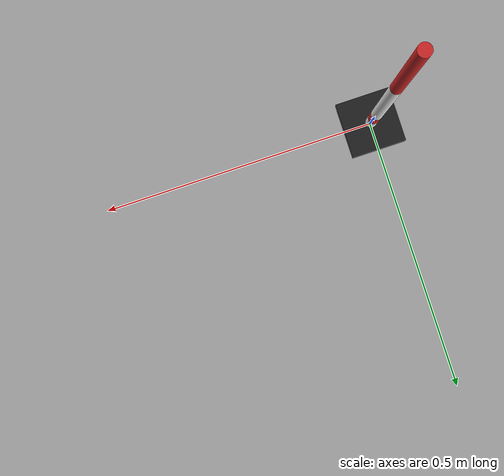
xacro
<?xml version="1.0" ?>
<robot name="robot2" xmlns:xacro="http://ros.org/wiki/xacro">

    <xacro:include filename="robot2_2.xacro" />

 <link name="world">
 </link>

 <joint name="bottom_joint" type="fixed">
    <origin xyz="0 0 0" rpy="0 0 0" />
    <parent link="world"/>
    <child link="base_link"/>
  </joint>

    <!-- base_link is a large rectangular plate. Some things to note: -->
    <!-- - We set the visual origin Z to half the box height, so that the link origin sits at the bottom of the box -->

    <link name="base_link">
        <visual>
            <origin xyz="0 0 ${base_height/2}" rpy="0 0 0"/>
            <geometry>
                <box size="${base_width}  ${base_width} ${base_height}"/>
            </geometry>
            <material name="Black"/>
        </visual>
        <collision>
             <origin xyz="0 0 ${base_height/2}" rpy="0 0 0"/>
            <geometry>
                <box size="${base_width}  ${base_width} ${base_height}" />
           </geometry>
        </collision>
         <xacro:inertial_box mass="0.5" x="${base_width} " y="${base_width} " z="${base_height} ">
            <origin xyz="0 0 ${base_height/2}" rpy="0 0 0"/>
        </xacro:inertial_box>
    </link>

   <gazebo reference="base_link">
    <material>Gazebo/Black</material>
  </gazebo>

 <xacro:joint_revolute_z joint_name="base_joint" parent_link ="base_link"
		child_link ="axis_2_link">
	 <origin xyz="0 0 ${base_height/2}" rpy="0 0 0"/>
</xacro:joint_revolute_z>

	 <!-- Axis_2 Link-->
 <link name="axis_2_link">
	<xacro:cylinder_visual_collision_white radius ="${axis_2_radius}" length = "${axis_2_height}">
	<origin  xyz="0 0 ${axis_2_height/2}" rpy="0 0 0"/>
	</xacro:cylinder_visual_collision_white>
	 <xacro:inertial_cylinder mass="0.5" length = "${axis_2_height}" radius ="${axis_2_radius}">
           <origin  xyz="0 0 ${axis_2_height/2}" rpy="0  ${45*deg_to_rad} 0"/>
        </xacro:inertial_cylinder>
</link>

 <joint name="axis_2_joint" type="fixed">
    <origin xyz="0 0 ${axis_2_height} " rpy="0 0 0" />
    <parent link="axis_2_link"/>
    <child link="axis_3_link"/>
  </joint>

	 <!-- Axis_3 Link-->

 <link name="axis_3_link">
	<xacro:cylinder_visual_collision_red radius ="${axis_2_radius}" length = "${axis_3_height}">
	<origin  xyz="0 0 ${axis_3_height/2}" rpy="0 0  0"/>
	</xacro:cylinder_visual_collision_red>
	 <xacro:inertial_cylinder mass="0.5" length = "${axis_3_height}" radius ="${axis_2_radius}">
           <origin  xyz="0 0 ${axis_3_height/2}" rpy="0  0 0"/>
        </xacro:inertial_cylinder>
</link>

 <xacro:joint_revolute_y joint_name="axis_3_joint" parent_link ="axis_3_link"
		child_link ="axis_4_link">
	 <origin xyz="0 0 ${axis_3_height}" rpy="0 0 0"/>
</xacro:joint_revolute_y>

	 <!-- Axis_4 Link-->

 <link name="axis_4_link">
	<xacro:cylinder_visual_collision_white radius ="${axis_2_radius}" length = "${axis_4_height}">
	<origin  xyz="0 0 ${axis_4_height/2}" rpy="0 0  0"/>
	</xacro:cylinder_visual_collision_white>
	 <xacro:inertial_cylinder mass="0.5" length = "${axis_4_height}" radius ="${axis_2_radius}">
           <origin  xyz="0 0 ${axis_4_height/2}" rpy="0  0 0"/>
        </xacro:inertial_cylinder>
</link>

 <xacro:joint_revolute_y joint_name="axis_4_joint" parent_link ="axis_4_link"
		child_link ="axis_5_link">
	 <origin xyz="0 0 ${axis_4_height}" rpy="0 0 0"/>
</xacro:joint_revolute_y>

		 <!-- Axis_5 Link-->

 <link name="axis_5_link">
	<xacro:cylinder_visual_collision_red radius ="${axis_2_radius}" length = "${axis_5_height}">
	<origin  xyz="0 0 ${axis_5_height/2}" rpy="0 0  0"/>
	</xacro:cylinder_visual_collision_red>
	 <xacro:inertial_cylinder mass="0.5" length = "${axis_5_height}" radius ="${axis_2_radius}">
           <origin  xyz="0 0 ${axis_5_height/2}" rpy="0  0 0"/>
        </xacro:inertial_cylinder>
</link>

  <gazebo>
    <plugin name="gazebo_ros_control" filename="libgazebo_ros_control.so">
    </plugin>
  </gazebo>
</robot>

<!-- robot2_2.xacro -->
<robot xmlns:xacro="http://www.ros.org/wiki/xacro" >

	 <!-- Include materials -->

     <xacro:property name="deg_to_rad" value="0.01745329251994329577"/>

  <!-- Constants -->
  <xacro:property name="M_SCALE_CM" value="0.01"/>
  <xacro:property name="M_PI" value="3.14159"/>

  <!-- Base properties -->
  <xacro:property name="base_height" value="0.1" />
  <xacro:property name="base_width" value="0.1" />

  <!-- Axis_2 Fixed Angles-->
  <xacro:property name="axis_2_height" value="0.343" />
  <xacro:property name="axis_2_radius" value="${0.01}" />

  <!-- Axis_3 Shoulder_Rotation -->
  <xacro:property name="axis_3_height" value="${0.267}" />

  <!-- Axis_4_Forearm_rotation-->
  <xacro:property name="axis_4_height" value="${1.5}" />

  <!-- Axis_5 Wrist rotation-->
  <xacro:property name="axis_5_height" value="${1.5}" />

  <xacro:macro name="inertial_box" params="mass x y z *origin">
        <inertial>
            <xacro:insert_block name="origin"/>
            <mass value="${mass}" />
            <inertia ixx="${(1/12) * mass * (y*y+z*z)}" ixy="0.0" ixz="0.0"
                    iyy="${(1/12) * mass * (x*x+z*z)}" iyz="0.0"
                    izz="${(1/12) * mass * (x*x+y*y)}" />
        </inertial>
    </xacro:macro>

    <xacro:macro name="inertial_cylinder" params="mass length radius *origin">
        <inertial>
            <xacro:insert_block name="origin"/>
            <mass value="${mass}" />
            <inertia ixx="${(1/12)*mass*(3*radius*radius+length*length)}" 				ixy="0.0" ixz="0.0"
                    iyy="${(1/12)*mass*(3*radius*radius+length*length)}" 				iyz="0.0"
                    izz="${(1/12)*mass*(radius*radius)}" />
        </inertial>
    </xacro:macro>

     <xacro:macro name="inertial_sphere" params="mass radius *origin">
        <inertial>
            <xacro:insert_block name="origin"/>
            <mass value="${mass}" />
            <inertia ixx="${(2/5) * mass * (radius*radius)}" ixy="0.0" ixz="0.0"
                    iyy="${(2/5) * mass * (radius*radius)}" iyz="0.0"
                    izz="${(2/5) * mass * (radius*radius)}" />
        </inertial>
    </xacro:macro>

<!-- Max effort 2 not wokring check  -->
  <xacro:property name="max_rads" value="10.157816"/>
  <xacro:property name="max_effort_2" value="17"/>

   <xacro:macro name="joint_revolute_z" params="joint_name parent_link child_link *origin">
        <joint name ="${joint_name}" type="revolute">
        <axis xyz="0 0 1" />
        <limit effort="15" velocity="${max_rads}" lower="-1.57" 					upper="1.57"/>
        <parent link ="${parent_link}"/>
    	<child link ="${child_link}"/>
        <xacro:insert_block name="origin"/>
  	</joint>
   </xacro:macro>

   <xacro:macro name="joint_revolute_y" params="joint_name parent_link child_link  *origin">
        <joint name = "${joint_name}" type= "revolute">
        <axis xyz="0 1 0" />
        <dynamics damping ="1" friction="2"/>
        <limit effort="50" velocity="${max_rads}" lower="${-150*deg_to_rad}" 				upper="${150*deg_to_rad}"/>
        <parent link="${parent_link}"/>
    	<child link="${child_link}"/>
            <xacro:insert_block name="origin"/>
    </joint>
    </xacro:macro>

     <xacro:macro name="cylinder_visual_collision_white" params="radius length  				*origin">
       <visual>
             <xacro:insert_block name="origin"/>
            <geometry>
                <cylinder radius="${radius}" length="${length}"/>
            </geometry>
            <material name="White"/>
        </visual>
        <collision>
             <xacro:insert_block name="origin"/>
            <geometry>
                <cylinder radius="${radius}" length="${length}"/>
            </geometry>
        </collision>
    </xacro:macro>

      <xacro:macro name="cylinder_visual_collision_red" params="radius length  				*origin">
       <visual>
             <xacro:insert_block name="origin"/>
            <geometry>
                <cylinder radius="${radius}" length="${length}"/>
            </geometry>
            <material name="Red"/>
        </visual>
        <collision>
             <xacro:insert_block name="origin"/>
            <geometry>
                <cylinder radius="${radius}" length="${length}"/>
            </geometry>
        </collision>
    </xacro:macro>
    <xacro:macro name="transmission" params= "joint_name">
     <transmission name="trans_${joint_name}">
  		<type>transmission_interface/SimpleTransmission</type>
     		<joint name="${joint_name}">
        		<hardwareInterface>hardware_interface/EffortJointInterface</hardwareInterface>
      		</joint>
      		<actuator name="motor_${joint_name}">
        		<hardwareInterface>hardware_interface/EffortJointInterface</hardwareInterface>
        		<mechanicalReduction>1</mechanicalReduction>
      		</actuator>
    	</transmission>
   </xacro:macro>

 </robot>
